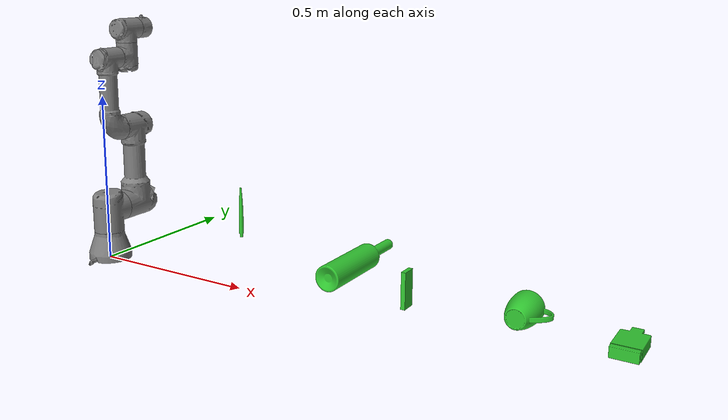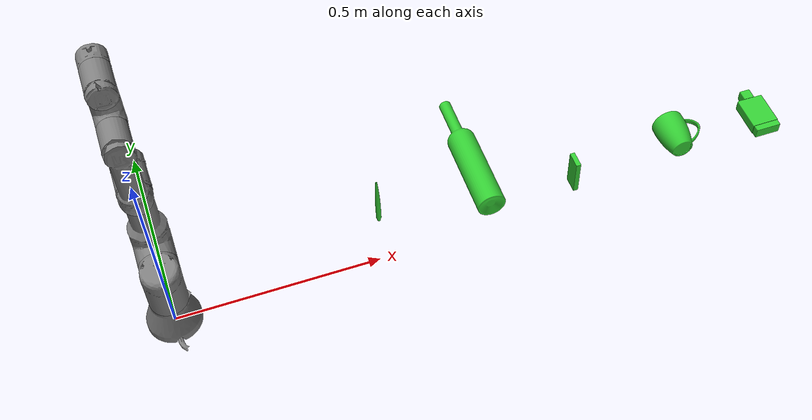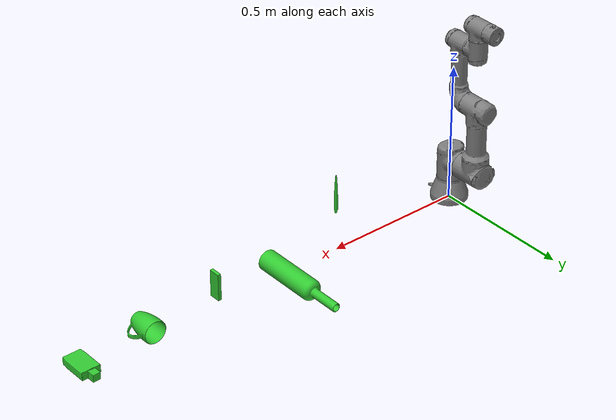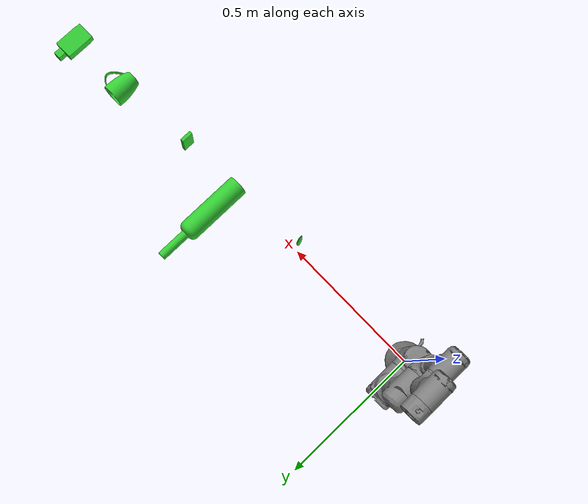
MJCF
<mujoco model="ur3">
  <compiler angle="radian" meshdir="assets"/>

  <!-- Gravity = 0 below -->
  <option integrator="implicit" timestep="0.002" gravity = "0 0 -9.81"/>

  <default>
    <default class="ur3">
      <material specular="0.5" shininess="0.25"/>
      <joint axis="0 1 0" range="-3.14159 3.14159" armature="0.1" damping="0.02"/>
      <general gaintype="fixed" biastype="affine" ctrlrange="-3.1415 3.1415" gainprm="2000" biasprm="0 -2000 -400" forcerange="-500 500"/>
      <default class="size3">
        <default class="size3_limited">
          <joint range="-1.5708 1.5708"/>
          <general ctrlrange="-1.5708 1.5708"/>
        </default>
      </default>
      <default class="size1">
        <general gainprm="500" biasprm="0 -500 -100" forcerange="-20 20"/>
      </default>
      <default class="visual">
        <geom type="mesh" contype="0" conaffinity="0" group="2"/>
      </default>
      <default class="collision">
        <geom type="capsule" group="3" size="0.03"/>
        <default class="eef_collision">
          <geom type="cylinder" size="0.02"/>
        </default>
      </default>
      <site size="0.001" rgba="0.5 0.5 0.5 0.3" group="4"/>
    </default>
  </default>

  <asset>
    <mesh name="ur3_base" file="ur3_base.obj" />
    <mesh name="ur3_shoulder" file="ur3_shoulder.obj" />
    <mesh name="ur3_upperarm" file="ur3_upperarm.obj" />
    <mesh name="ur3_forearm" file="ur3_forearm.obj" />
    <mesh name="ur3_wrist1" file="ur3_wrist1.obj" />
    <mesh name="ur3_wrist2" file="ur3_wrist2.obj" />
    <mesh name="ur3_wrist3" file="ur3_wrist3.obj" />

    <mesh name="pen" file="assets/Pen.STL" scale="0.001 0.001 0.001"/>
    <mesh name="bottle" file="assets/Bottle.STL" scale="0.001 0.001 0.001"/>
    <mesh name="matches" file="assets/Matches.STL" scale="0.001 0.001 0.001"/>
    <mesh name="mug" file="assets/Mug.STL" scale="0.001 0.001 0.001"/>
    <mesh name="parfum" file="assets/Parfum.STL" scale="0.001 0.001 0.001"/>

  </asset>

  <worldbody>

  <body name="pen" pos="0.5 0 0.15">
    <inertial mass="5.1" pos="0 0 0" diaginertia="0.001 0.001 0.001"/>
    <joint name="pen_free_joint" type="free"/>
    <geom type="mesh" mesh="pen" rgba="0.2 0.8 0.2 1"/>
  </body>

  <body name="bottle" pos="0.75 0 0.05">
    <inertial mass="5.3" pos="0 0 0" diaginertia="0.001 0.001 0.001"/>
    <joint name="bottle_free_joint" type="free"/>
    <geom type="mesh" mesh="bottle" rgba="0.2 0.8 0.2 1"/>
  </body>

  <body name="matches" pos="1 0 0.05">
    <inertial mass="5.01" pos="0 0 0" diaginertia="0.001 0.001 0.001"/>
    <joint name="matches_free_joint" type="free"/>
    <geom type="mesh" mesh="matches" rgba="0.2 0.8 0.2 1"/>
  </body>

  <body name="mug" pos="1.25 0 0.05">
    <inertial mass="5.2" pos="0 0 0" diaginertia="0.001 0.001 0.001"/>
    <joint name="mug_free_joint" type="free"/>
    <geom type="mesh" mesh="mug" rgba="0.2 0.8 0.2 1"/>
  </body>

  <body name="parfum" pos="1.5 0 0.05">
    <inertial mass="50.2" pos="0 0 0" diaginertia="0.001 0.001 0.001"/>
    <joint name="parfum_free_joint" type="free"/>
    <geom type="mesh" mesh="parfum" rgba="0.2 0.8 0.2 1"/>
  </body>

    <body name="base" pos="0 0 0" childclass="ur3">
      <inertial mass="5.0" pos="0 0 0.05" diaginertia="0.02 0.02 0.02"/>
      <geom type="mesh" mesh="ur3_base"/>
      <body name="shoulder_link" pos="0 0 0.152">
        <inertial mass="3.0" pos="0 0 0.05" diaginertia="0.02 0.02 0.015"/>
        <joint name="shoulder_pan_joint" axis="0 0 1" range="-2.5 2.5" damping="0.001"/>
        <geom type="mesh" mesh="ur3_shoulder"/>
        <body name="upper_arm_link" pos="0 0.1198 0">
          <inertial mass="3.42" pos="0 0 0.1" diaginertia="0.03 0.03 0.02"/>
          <joint name="shoulder_lift_joint" axis="0 1 0" range="-2.5 2.5"/>
          <geom type="mesh" mesh="ur3_upperarm"/>
          <body name="forearm_link" pos="0 -0.0925 0.24365">
            <inertial mass="1.5" pos="0 0 0.08" diaginertia="0.02 0.02 0.01"/>
            <joint name="elbow_joint" axis="0 1 0" range="-2.5 2.5"/>
            <geom type="mesh" mesh="ur3_forearm"/>
            <body name="wrist_1_link" pos="0 0 0.21325">
              <inertial mass="3.42" pos="0 0 0.1" diaginertia="0.03 0.03 0.02"/>
              <joint name="wrist_1_joint" axis="0 1 0" range="-2.5 2.5"/>
              <geom type="mesh" mesh="ur3_wrist1"/>
              <body name="wrist_2_link" pos="0 0.08505 0">
                <inertial mass="3.42" pos="0 0 0.1" diaginertia="0.03 0.03 0.02"/>
                <joint name="wrist_2_joint" axis="0 0 1" range="-2.5 2.5"/>
                <geom type="mesh" mesh="ur3_wrist2"/>
                <body name="wrist_3_link" pos="0 0 0.08535">
                  <inertial mass="3.42" pos="0 0 0.1" diaginertia="0.03 0.03 0.02"/>
                  <joint name="wrist_3_joint" axis="0 1 0" range="-2.5 2.5"/>
                  <geom type="mesh" mesh="ur3_wrist3"/>
                </body>
              </body>
            </body>
          </body>
        </body>
      </body>
    </body>
  </worldbody>

  <actuator>
    <general class="size1" name="shoulder_pan" joint="shoulder_pan_joint" gainprm="1000" biasprm="0 -1000 -200" forcerange="-100 100"/>
    <general class="size3" name="shoulder_lift" joint="shoulder_lift_joint" gainprm="1000" biasprm="0 -1000 -200" forcerange="-100 100"/>
    <general class="size3_limited" name="elbow" joint="elbow_joint"/>
    <general class="size1" name="wrist_1" joint="wrist_1_joint"/>
    <general class="size1" name="wrist_2" joint="wrist_2_joint"/>
    <general class="size1" name="wrist_3" joint="wrist_3_joint"/>
  </actuator>
</mujoco>
